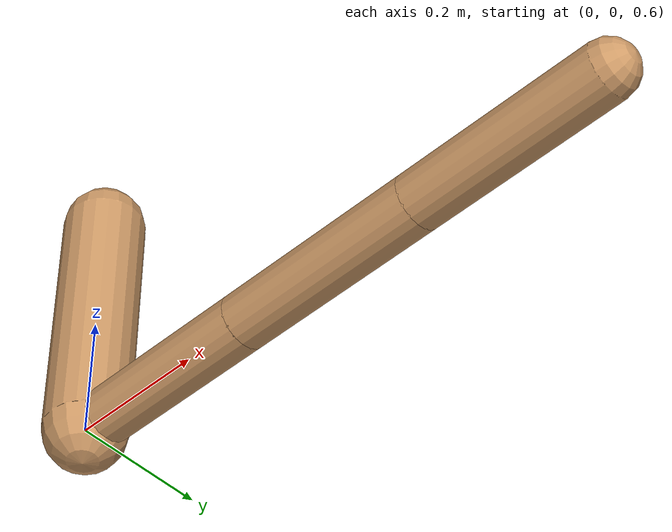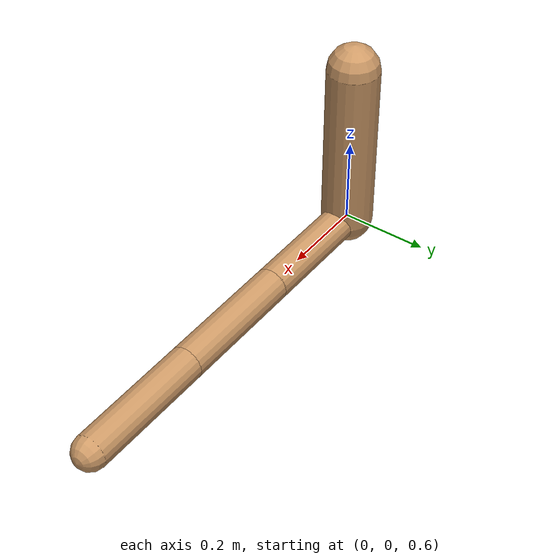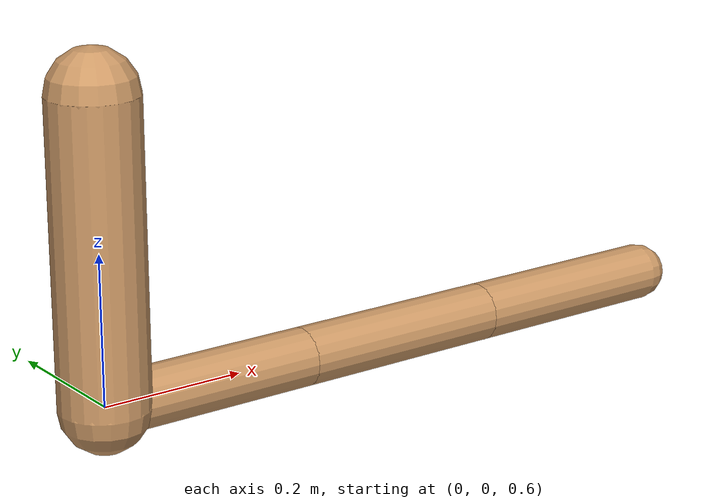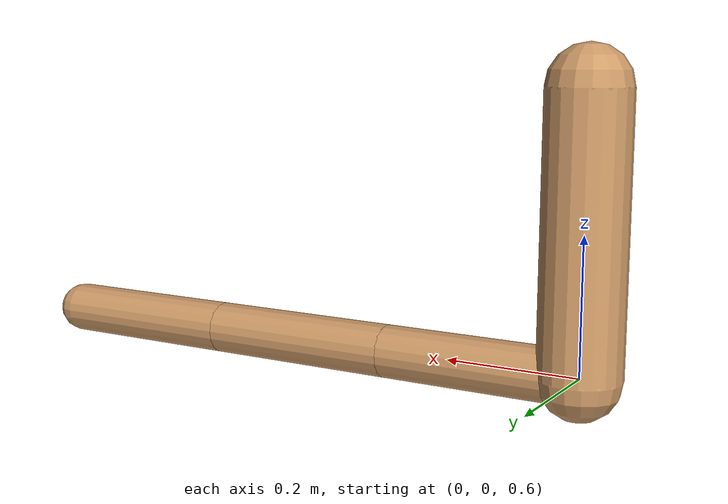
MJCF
<mujoco model="example_arm_fixed">
  <option timestep="0.002"/>

  <default>
    <joint type="hinge" damping="1" armature="0.01" limited="true"/>
    <geom type="capsule"
          condim="3"
          friction="0.8 0.1 0.1"
          solimp="0.9 0.99 0.003"
          solref="0.01 1"
          rgba=".8 .6 .4 1"/>
    <motor ctrlrange="-1 1" ctrllimited="true"/>
  </default>

  <worldbody>
    <light pos="0 1 1" dir="0 -1 -1" diffuse="1 1 1"/>

    <body name="upper_arm" pos="0 0 1">
      <joint name="shoulder_y" axis="0 1 0" range="-90 90"/>
      <joint name="shoulder_x" axis="1 0 0" range="-60 60"/>
      <geom name="upper_capsule" size="0.06" fromto="0 0 0  0 0 -0.4"/>

      <body name="lower_arm" pos="0 0 -0.4">
        <joint name="elbow1" axis="0 1 0" range="0 150"/>
        <geom name="lower_capsule" size="0.04" fromto="0 0 0  0.3 0 0"/>

        <!-- ✅ 第三段接在第二段末端：pos = (0.3,0,0) -->
        <body name="lower_lower_arm" pos="0.3 0 0">
          <joint name="elbow2" axis="0 1 0" range="0 150"/>
          <geom name="lower_lower_capsule" size="0.04" fromto="0 0 0  0.3 0 0"/>
            <body name="lower_lower_lower_arm" pos="0.3 0 0">
              <joint name="elbow3" axis = "0 1 0" range="0 150"/>
              <geom name="lower_lower_lower_capsule" size="0.04" fromto="0 0 0 0.3 0 0"/>
            </body>

        </body>
      </body>
    </body>
  </worldbody>

  <actuator>
    <motor name="m_shoulder_y" joint="shoulder_y" gear="20"/>
    <motor name="m_shoulder_x" joint="shoulder_x" gear="20"/>
    <motor name="m_elbow1"     joint="elbow1"     gear="15"/>
    <motor name="m_elbow2"     joint="elbow2"     gear="15"/>
    <motor name ="m_elbow3"    joint="elbow3"     gear="15"/>
  </actuator>
</mujoco>
